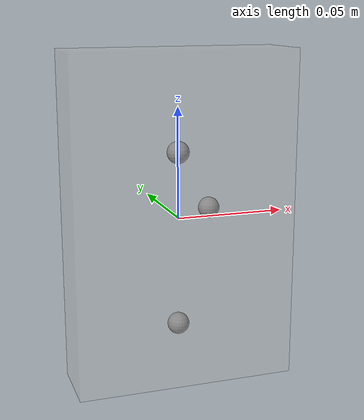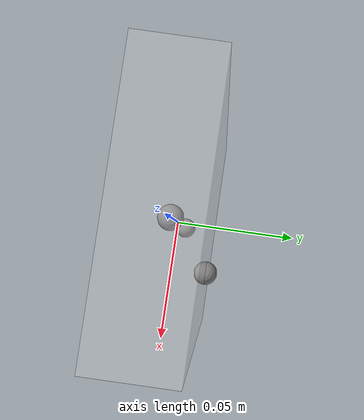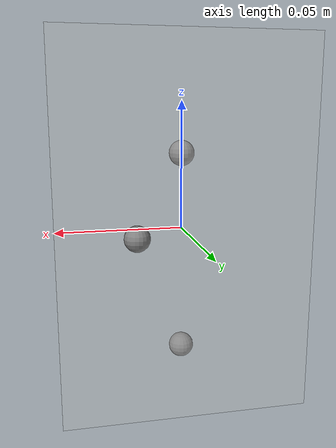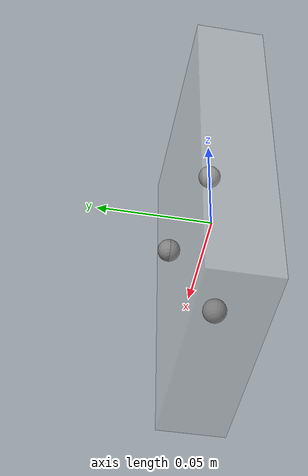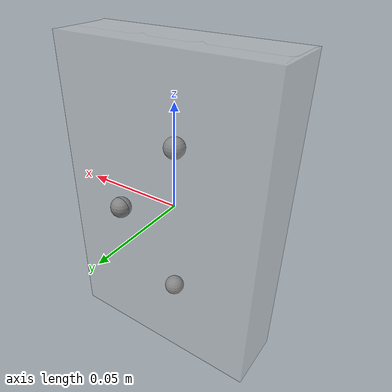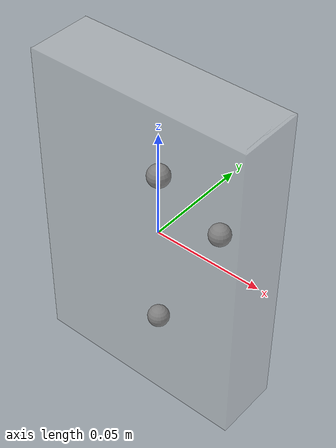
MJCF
<mujoco model="cereal">
  <asset>
    <mesh file="meshes/cereal.stl" name="cereal_mesh"/>
    <texture file="../textures/cereal.png" rgb1="1 1 1" name="tex-cereal"/>
    <material name="cereal" reflectance="0.5" texrepeat="2 2" texture="tex-cereal" texuniform="true"/>
  </asset>
  <worldbody>
    <body>
      <body name="visual">
        <geom pos="0 0 0" mesh="cereal_mesh" type="mesh" rgba="0.8 0.8 0.8 0.3"  conaffinity="0" contype="0"  group="0" mass="0.0001"/>
        <geom pos="0 0 0" mesh="cereal_mesh" type="mesh" rgba="0.8 0.8 0.8 0.3"  conaffinity="0" contype="0"  group="1" mass="0.0001"/>
      </body>
      <site pos="0 0 -0.05" name="bottom_site"/>
      <site pos="0 0 0.03" name="top_site"/>
      <site pos="0.02 0.015 0" name="horizontal_radius_site"/>
    </body>
  </worldbody>
</mujoco>
